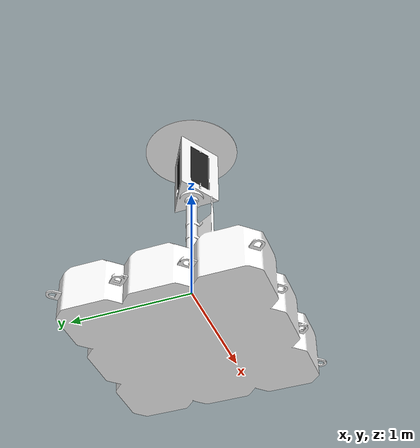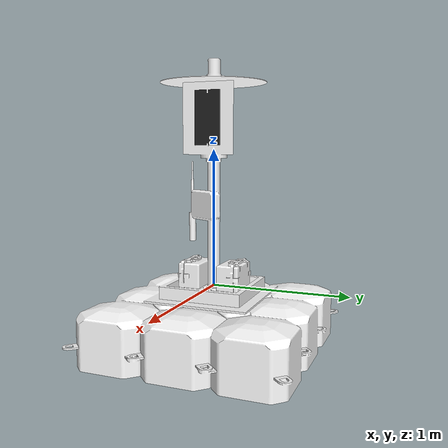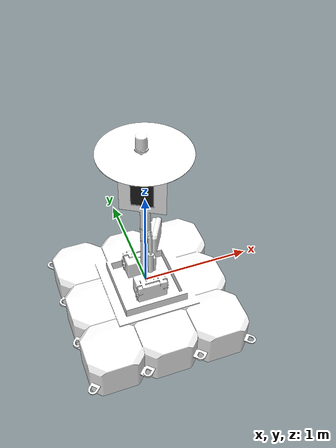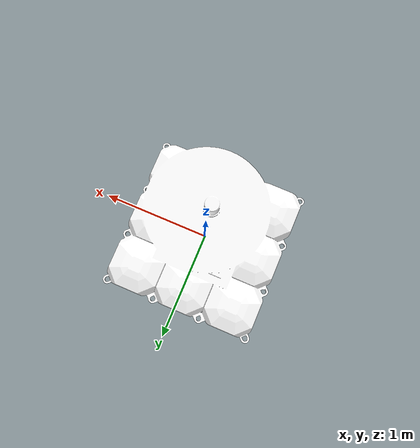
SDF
<?xml version="1.0"?>
<sdf version="1.6">
  <model name="robotx_light_buoy_yrg">
    <pose>0 0 -0.0762 0 0 0</pose>
    <link name="base_link">
      <inertial>
        <pose>0 0 -0.2 0 0 0</pose>
        <!-- 6.35 Kg. (dock block) x 9 (num blocks) + 10 Kg (estimated). -->
        <mass>67.15</mass>
        <inertia>
          <ixx>13.486</ixx>
          <ixy>0</ixy>
          <ixz>0</ixz>
          <iyy>13.486</iyy>
          <iyz>0</iyz>
          <izz>25.1813</izz>
        </inertia>
      </inertial>
      <visual name="base">
        <geometry>
           <mesh>
            <uri>file://robotx_light_buoy_rgb/mesh/robotx_light_buoy.dae</uri>
          </mesh>
        </geometry>
        <material>
          <diffuse>1.0 1.0 1.0</diffuse>
          <specular>1.0 1.0 1.0</specular>
          <pbr>
            <metal>
              <albedo_map>file://robotx_light_buoy_rgb/mesh/LightTower_Albedo.png</albedo_map>
              <normal_map>file://robotx_light_buoy_rgb/mesh/LightTower_Normal.png</normal_map>
              <roughness_map>file://robotx_light_buoy_rgb/mesh/LightTower_Roughness.png</roughness_map>
              <metalness_map>file://robotx_light_buoy_rgb/mesh/LightTower_Metalness.png</metalness_map>
            </metal>
          </pbr>
        </material>
      </visual>
      <visual name="panel_1">
        <pose>-0.05 0.09 1.3 0 0 0.5</pose>
        <geometry>
          <box>
            <size>.192 .01 .386</size>
          </box>
        </geometry>
        <material>
          <script>
            <uri>file://media/materials/scripts/gazebo.material</uri>
            <name>Gazebo/Black</name>
          </script>
        </material>
        <plugin name="vrx::LightBuoyPlugin" filename="libLightBuoyPlugin.so">
          <color_1>yellow</color_1>
          <color_2>red</color_2>
          <color_3>green</color_3>
          <visuals>
            <visual>robotx_light_buoy_yrg::base_link::panel_1</visual>
            <visual>robotx_light_buoy_yrg::base_link::panel_2</visual>
            <visual>robotx_light_buoy_yrg::base_link::panel_3</visual>
          </visuals>
        </plugin>
      </visual>
      <visual name="panel_2">
        <pose>-0.06 -0.085 1.3 0 0 -0.54719</pose>
        <geometry>
          <box>
            <size>.192 .01 .386</size>
          </box>
        </geometry>
        <material>
          <script>
            <uri>file://media/materials/scripts/gazebo.material</uri>
            <name>Gazebo/Black</name>
          </script>
        </material>
      </visual>
      <visual name="panel_3">
        <pose>0.11 -0.003 1.3 0 0 1.5472</pose>
        <geometry>
          <box>
            <size>.192 .01 .386</size>
          </box>
        </geometry>
        <material>
          <script>
            <uri>file://media/materials/scripts/gazebo.material</uri>
            <name>Gazebo/Black</name>
          </script>
        </material>
      </visual>
      <collision name="collision_base">
        <pose>0 0 -0.2 0 0 0</pose>
        <geometry>
           <box>
            <size>1.5 1.5 0.4</size>
          </box>
        </geometry>
      </collision>
      <collision name="collision_body">
        <pose>0 0 0.85 0 0 0</pose>
        <geometry>
           <cylinder>
            <radius>0.4</radius>
            <length>1.75</length>
          </cylinder>
        </geometry>
      </collision>
    </link>

  </model>
</sdf>
